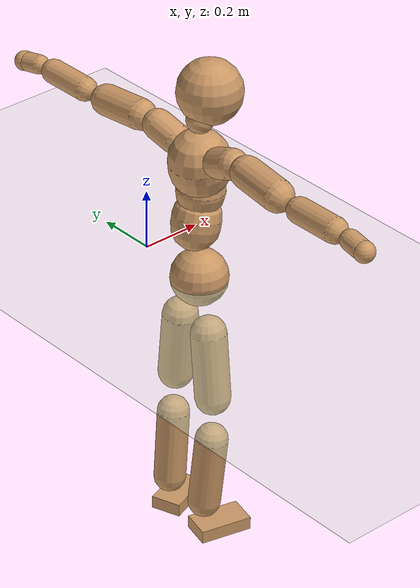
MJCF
<mujoco model="humanoid">
  <compiler coordinate="local" angle="radian"/>
  <default>
    <joint damping="0.0" armature="0.01" stiffness="0.0" limited="true"/>
    <geom conaffinity="1" condim="3" contype="7" margin="0.001" rgba="0.8 0.6 .4 1"/>
  </default>
  <asset>
    <texture type="skybox" builtin="gradient" rgb1=".4 .5 .6" rgb2="0 0 0" width="100" height="100"/>
    <texture builtin="flat" height="1278" mark="cross" markrgb="1 1 1" name="texgeom" random="0.01" rgb1="0.8 0.6 0.4" rgb2="0.8 0.6 0.4" type="cube" width="127"/>
    <texture builtin="checker" height="100" name="texplane" rgb1="0 0 0" rgb2="0.8 0.8 0.8" type="2d" width="100"/>
    <material name="MatPlane" reflectance="0.5" shininess="1" specular="1" texrepeat="60 60" texture="texplane"/>
    <material name="geom" texture="texgeom" texuniform="true"/>
  </asset>
  <worldbody>
    <light cutoff="100" diffuse="1 1 1" dir="-0 0 -1.3" directional="true" exponent="1" pos="0 0 1.3" specular=".1 .1 .1"/>
    <geom conaffinity="1" condim="3" name="floor" pos="0 0 0" rgba="0.8 0.9 0.8 1" size="100 100 .2" type="plane" material="MatPlane"/>
    <body name="Pelvis" pos="-0.0002 -0.2492 0.0105">
      <freejoint name="Pelvis"/>
      <geom type="sphere" contype="1" conaffinity="1" density="500" size="0.0929" pos="0.0000 0.0000 0.0000" name="Pelvis"/>
      <body name="L_Hip" pos="-0.0231 0.0556 -0.0836">
        <joint name="L_Hip_x" type="hinge" pos="0 0 0" axis="1 0 0" stiffness="800" damping="80" armature="0.02" range="-180.0000 180.0000"/>
        <joint name="L_Hip_y" type="hinge" pos="0 0 0" axis="0 1 0" stiffness="800" damping="80" armature="0.02" range="-180.0000 180.0000"/>
        <joint name="L_Hip_z" type="hinge" pos="0 0 0" axis="0 0 1" stiffness="800" damping="80" armature="0.02" range="-180.0000 180.0000"/>
        <geom type="capsule" contype="1" conaffinity="1" density="500" fromto="0.0008 0.0081 -0.0755 0.0032 0.0326 -0.3021" size="0.058" name="L_Hip"/>
        <body name="L_Knee" pos="0.004 0.0407 -0.3776">
          <joint name="L_Knee_x" type="hinge" pos="0 0 0" axis="1 0 0" stiffness="800" damping="80" armature="0.02" range="-180.0000 180.0000"/>
          <joint name="L_Knee_y" type="hinge" pos="0 0 0" axis="0 1 0" stiffness="800" damping="80" armature="0.02" range="-180.0000 180.0000"/>
          <joint name="L_Knee_z" type="hinge" pos="0 0 0" axis="0 0 1" stiffness="800" damping="80" armature="0.02" range="-180.0000 180.0000"/>
          <geom type="capsule" contype="1" conaffinity="1" density="500" fromto="-0.0075 -0.0027 -0.0796 -0.0301 -0.0107 -0.3185" size="0.053" name="L_Knee"/>
          <body name="L_Ankle" pos="-0.0377 -0.0134 -0.3981">
            <joint name="L_Ankle_x" type="hinge" pos="0 0 0" axis="1 0 0" stiffness="800" damping="80" armature="0.02" range="-180.0000 180.0000"/>
            <joint name="L_Ankle_y" type="hinge" pos="0 0 0" axis="0 1 0" stiffness="800" damping="80" armature="0.02" range="-180.0000 180.0000"/>
            <joint name="L_Ankle_z" type="hinge" pos="0 0 0" axis="0 0 1" stiffness="800" damping="80" armature="0.02" range="-180.0000 180.0000"/>
            <geom type="box" contype="1" conaffinity="1" density="500" pos="0.0581 0.0205 -0.0287" size="0.0813 0.0502 0.0218" quat="0.9857 0.0000 0.0000 0.1686" name="L_Ankle"/>
            <body name="L_Toe" pos="0.1161 0.0409 -0.0575">
              <joint name="L_Toe_x" type="hinge" pos="0 0 0" axis="1 0 0" stiffness="500" damping="50" armature="0.02" range="-180.0000 180.0000"/>
              <joint name="L_Toe_y" type="hinge" pos="0 0 0" axis="0 1 0" stiffness="500" damping="50" armature="0.02" range="-180.0000 180.0000"/>
              <joint name="L_Toe_z" type="hinge" pos="0 0 0" axis="0 0 1" stiffness="500" damping="50" armature="0.02" range="-180.0000 180.0000"/>
              <geom type="box" contype="1" conaffinity="1" density="500" pos="0.0000 0.0000 0.0297" size="0.001 0.0024 0.0011" quat="0.9849 0.0000 0.0000 0.1734" name="L_Toe"/>
            </body>
          </body>
        </body>
      </body>
      <body name="R_Hip" pos="-0.0192 -0.0588 -0.0922">
        <joint name="R_Hip_x" type="hinge" pos="0 0 0" axis="1 0 0" stiffness="800" damping="80" armature="0.02" range="-180.0000 180.0000"/>
        <joint name="R_Hip_y" type="hinge" pos="0 0 0" axis="0 1 0" stiffness="800" damping="80" armature="0.02" range="-180.0000 180.0000"/>
        <joint name="R_Hip_z" type="hinge" pos="0 0 0" axis="0 0 1" stiffness="800" damping="80" armature="0.02" range="-180.0000 180.0000"/>
        <geom type="capsule" contype="1" conaffinity="1" density="500" fromto="-0.0014 -0.0085 -0.0749 -0.0055 -0.0341 -0.2994" size="0.0578" name="R_Hip"/>
        <body name="R_Knee" pos="-0.0068 -0.0427 -0.3743">
          <joint name="R_Knee_x" type="hinge" pos="0 0 0" axis="1 0 0" stiffness="800" damping="80" armature="0.02" range="-180.0000 180.0000"/>
          <joint name="R_Knee_y" type="hinge" pos="0 0 0" axis="0 1 0" stiffness="800" damping="80" armature="0.02" range="-180.0000 180.0000"/>
          <joint name="R_Knee_z" type="hinge" pos="0 0 0" axis="0 0 1" stiffness="800" damping="80" armature="0.02" range="-180.0000 180.0000"/>
          <geom type="capsule" contype="1" conaffinity="1" density="500" fromto="-0.0068 0.0037 -0.0787 -0.0273 0.0146 -0.3147" size="0.0535" name="R_Knee"/>
          <body name="R_Ankle" pos="-0.0341 0.0183 -0.3933">
            <joint name="R_Ankle_x" type="hinge" pos="0 0 0" axis="1 0 0" stiffness="800" damping="80" armature="0.02" range="-180.0000 180.0000"/>
            <joint name="R_Ankle_y" type="hinge" pos="0 0 0" axis="0 1 0" stiffness="800" damping="80" armature="0.02" range="-180.0000 180.0000"/>
            <joint name="R_Ankle_z" type="hinge" pos="0 0 0" axis="0 0 1" stiffness="800" damping="80" armature="0.02" range="-180.0000 180.0000"/>
            <geom type="box" contype="1" conaffinity="1" density="500" pos="0.0624 -0.0150 -0.0306" size="0.0866 0.0499 0.0219" quat="0.9931 0.0000 0.0000 -0.1176" name="R_Ankle"/>
            <body name="R_Toe" pos="0.1247 -0.0299 -0.0611">
              <joint name="R_Toe_x" type="hinge" pos="0 0 0" axis="1 0 0" stiffness="500" damping="50" armature="0.02" range="-180.0000 180.0000"/>
              <joint name="R_Toe_y" type="hinge" pos="0 0 0" axis="0 1 0" stiffness="500" damping="50" armature="0.02" range="-180.0000 180.0000"/>
              <joint name="R_Toe_z" type="hinge" pos="0 0 0" axis="0 0 1" stiffness="500" damping="50" armature="0.02" range="-180.0000 180.0000"/>
              <geom type="box" contype="1" conaffinity="1" density="500" pos="0.0000 0.0000 0.0326" size="0.001 0.0024 0.0012" quat="0.9941 0.0000 0.0000 -0.1083" name="R_Toe"/>
            </body>
          </body>
        </body>
      </body>
      <body name="Torso" pos="-0.025 0.0043 0.125">
        <joint name="Torso_x" type="hinge" pos="0 0 0" axis="1 0 0" stiffness="1000" damping="100" armature="0.02" range="-180.0000 180.0000"/>
        <joint name="Torso_y" type="hinge" pos="0 0 0" axis="0 1 0" stiffness="1000" damping="100" armature="0.02" range="-180.0000 180.0000"/>
        <joint name="Torso_z" type="hinge" pos="0 0 0" axis="0 0 1" stiffness="1000" damping="100" armature="0.02" range="-180.0000 180.0000"/>
        <geom type="capsule" contype="1" conaffinity="1" density="500" fromto="0.0208 0.0031 0.0872 0.0139 0.0020 0.0581" size="0.0784" name="Torso"/>
        <body name="Spine" pos="0.0347 0.0051 0.1453">
          <joint name="Spine_x" type="hinge" pos="0 0 0" axis="1 0 0" stiffness="1000" damping="100" armature="0.02" range="-180.0000 180.0000"/>
          <joint name="Spine_y" type="hinge" pos="0 0 0" axis="0 1 0" stiffness="1000" damping="100" armature="0.02" range="-180.0000 180.0000"/>
          <joint name="Spine_z" type="hinge" pos="0 0 0" axis="0 0 1" stiffness="1000" damping="100" armature="0.02" range="-180.0000 180.0000"/>
          <geom type="capsule" contype="1" conaffinity="1" density="500" fromto="0.0022 -0.0017 0.0348 0.0015 -0.0011 0.0232" size="0.0772" name="Spine"/>
          <body name="Chest" pos="0.0036 -0.0029 0.0581">
            <joint name="Chest_x" type="hinge" pos="0 0 0" axis="1 0 0" stiffness="1000" damping="100" armature="0.02" range="-180.0000 180.0000"/>
            <joint name="Chest_y" type="hinge" pos="0 0 0" axis="0 1 0" stiffness="1000" damping="100" armature="0.02" range="-180.0000 180.0000"/>
            <joint name="Chest_z" type="hinge" pos="0 0 0" axis="0 0 1" stiffness="1000" damping="100" armature="0.02" range="-180.0000 180.0000"/>
            <geom type="capsule" contype="1" conaffinity="1" density="500" fromto="-0.0143 -0.0055 0.0848 -0.0095 -0.0037 0.0565" size="0.0975" name="Chest"/>
            <body name="Neck" pos="-0.0286 -0.0142 0.2058">
              <joint name="Neck_x" type="hinge" pos="0 0 0" axis="1 0 0" stiffness="500" damping="50" armature="0.02" range="-180.0000 180.0000"/>
              <joint name="Neck_y" type="hinge" pos="0 0 0" axis="0 1 0" stiffness="500" damping="50" armature="0.02" range="-180.0000 180.0000"/>
              <joint name="Neck_z" type="hinge" pos="0 0 0" axis="0 0 1" stiffness="500" damping="50" armature="0.02" range="-180.0000 180.0000"/>
              <geom type="capsule" contype="1" conaffinity="1" density="500" fromto="0.0109 0.0016 0.0192 0.0437 0.0064 0.0768" size="0.0441" name="Neck"/>
              <body name="Head" pos="0.0546 0.008 0.096">
                <joint name="Head_x" type="hinge" pos="0 0 0" axis="1 0 0" stiffness="500" damping="50" armature="0.02" range="-180.0000 180.0000"/>
                <joint name="Head_y" type="hinge" pos="0 0 0" axis="0 1 0" stiffness="500" damping="50" armature="0.02" range="-180.0000 180.0000"/>
                <joint name="Head_z" type="hinge" pos="0 0 0" axis="0 0 1" stiffness="500" damping="50" armature="0.02" range="-180.0000 180.0000"/>
                <geom type="sphere" contype="1" conaffinity="1" density="500" size="0.1036" pos="0.0000 0.0000 0.0000" name="Head"/>
              </body>
            </body>
            <body name="L_Thorax" pos="-0.0203 0.0683 0.1088">
              <joint name="L_Thorax_x" type="hinge" pos="0 0 0" axis="1 0 0" stiffness="500" damping="50" armature="0.02" range="-180.0000 180.0000"/>
              <joint name="L_Thorax_y" type="hinge" pos="0 0 0" axis="0 1 0" stiffness="500" damping="50" armature="0.02" range="-180.0000 180.0000"/>
              <joint name="L_Thorax_z" type="hinge" pos="0 0 0" axis="0 0 1" stiffness="500" damping="50" armature="0.02" range="-180.0000 180.0000"/>
              <geom type="capsule" contype="1" conaffinity="1" density="500" fromto="-0.0037 0.0231 0.0084 -0.0146 0.0924 0.0337" size="0.0486" name="L_Thorax"/>
              <body name="L_Shoulder" pos="-0.0183 0.1155 0.0421">
                <joint name="L_Shoulder_x" type="hinge" pos="0 0 0" axis="1 0 0" stiffness="500" damping="50" armature="0.02" range="-720.0000 720.0000"/>
                <joint name="L_Shoulder_y" type="hinge" pos="0 0 0" axis="0 1 0" stiffness="500" damping="50" armature="0.02" range="-720.0000 720.0000"/>
                <joint name="L_Shoulder_z" type="hinge" pos="0 0 0" axis="0 0 1" stiffness="500" damping="50" armature="0.02" range="-720.0000 720.0000"/>
                <geom type="capsule" contype="1" conaffinity="1" density="500" fromto="-0.0029 0.0499 -0.0029 -0.0117 0.1998 -0.0115" size="0.0499" name="L_Shoulder"/>
                <body name="L_Elbow" pos="-0.0146 0.2497 -0.0143">
                  <joint name="L_Elbow_x" type="hinge" pos="0 0 0" axis="1 0 0" stiffness="500" damping="50" armature="0.02" range="-720.0000 720.0000"/>
                  <joint name="L_Elbow_y" type="hinge" pos="0 0 0" axis="0 1 0" stiffness="500" damping="50" armature="0.02" range="-720.0000 720.0000"/>
                  <joint name="L_Elbow_z" type="hinge" pos="0 0 0" axis="0 0 1" stiffness="500" damping="50" armature="0.02" range="-720.0000 720.0000"/>
                  <geom type="capsule" contype="1" conaffinity="1" density="500" fromto="-0.0022 0.0487 0.0017 -0.0088 0.1946 0.0068" size="0.0394" name="L_Elbow"/>
                  <body name="L_Wrist" pos="-0.0111 0.2433 0.0085">
                    <joint name="L_Wrist_x" type="hinge" pos="0 0 0" axis="1 0 0" stiffness="300" damping="30" armature="0.02" range="-180.0000 180.0000"/>
                    <joint name="L_Wrist_y" type="hinge" pos="0 0 0" axis="0 1 0" stiffness="300" damping="30" armature="0.02" range="-180.0000 180.0000"/>
                    <joint name="L_Wrist_z" type="hinge" pos="0 0 0" axis="0 0 1" stiffness="300" damping="30" armature="0.02" range="-180.0000 180.0000"/>
                    <geom type="capsule" contype="1" conaffinity="1" density="500" fromto="-0.0028 0.0155 -0.0019 -0.0111 0.0622 -0.0076" size="0.0311" name="L_Wrist"/>
                    <body name="L_Hand" pos="-0.0139 0.0777 -0.0095">
                      <joint name="L_Hand_x" type="hinge" pos="0 0 0" axis="1 0 0" stiffness="300" damping="30" armature="0.02" range="-180.0000 180.0000"/>
                      <joint name="L_Hand_y" type="hinge" pos="0 0 0" axis="0 1 0" stiffness="300" damping="30" armature="0.02" range="-180.0000 180.0000"/>
                      <joint name="L_Hand_z" type="hinge" pos="0 0 0" axis="0 0 1" stiffness="300" damping="30" armature="0.02" range="-180.0000 180.0000"/>
                      <geom type="sphere" contype="1" conaffinity="1" density="500" size="0.0322" pos="0.0000 0.0000 0.0000" name="L_Hand"/>
                    </body>
                  </body>
                </body>
              </body>
            </body>
            <body name="R_Thorax" pos="-0.0227 -0.0817 0.1092">
              <joint name="R_Thorax_x" type="hinge" pos="0 0 0" axis="1 0 0" stiffness="500" damping="50" armature="0.02" range="-180.0000 180.0000"/>
              <joint name="R_Thorax_y" type="hinge" pos="0 0 0" axis="0 1 0" stiffness="500" damping="50" armature="0.02" range="-180.0000 180.0000"/>
              <joint name="R_Thorax_z" type="hinge" pos="0 0 0" axis="0 0 1" stiffness="500" damping="50" armature="0.02" range="-180.0000 180.0000"/>
              <geom type="capsule" contype="1" conaffinity="1" density="500" fromto="-0.0014 -0.0215 0.0086 -0.0055 -0.0861 0.0343" size="0.0491" name="R_Thorax"/>
              <body name="R_Shoulder" pos="-0.0069 -0.1076 0.0429">
                <joint name="R_Shoulder_x" type="hinge" pos="0 0 0" axis="1 0 0" stiffness="500" damping="50" armature="0.02" range="-720.0000 720.0000"/>
                <joint name="R_Shoulder_y" type="hinge" pos="0 0 0" axis="0 1 0" stiffness="500" damping="50" armature="0.02" range="-720.0000 720.0000"/>
                <joint name="R_Shoulder_z" type="hinge" pos="0 0 0" axis="0 0 1" stiffness="500" damping="50" armature="0.02" range="-720.0000 720.0000"/>
                <geom type="capsule" contype="1" conaffinity="1" density="500" fromto="-0.0047 -0.0498 -0.0026 -0.0190 -0.1991 -0.0104" size="0.0514" name="R_Shoulder"/>
                <body name="R_Elbow" pos="-0.0237 -0.2488 -0.013">
                  <joint name="R_Elbow_x" type="hinge" pos="0 0 0" axis="1 0 0" stiffness="500" damping="50" armature="0.02" range="-720.0000 720.0000"/>
                  <joint name="R_Elbow_y" type="hinge" pos="0 0 0" axis="0 1 0" stiffness="500" damping="50" armature="0.02" range="-720.0000 720.0000"/>
                  <joint name="R_Elbow_z" type="hinge" pos="0 0 0" axis="0 0 1" stiffness="500" damping="50" armature="0.02" range="-720.0000 720.0000"/>
                  <geom type="capsule" contype="1" conaffinity="1" density="500" fromto="-0.0017 -0.0505 0.0016 -0.0069 -0.2020 0.0065" size="0.041" name="R_Elbow"/>
                  <body name="R_Wrist" pos="-0.0086 -0.2525 0.0081">
                    <joint name="R_Wrist_x" type="hinge" pos="0 0 0" axis="1 0 0" stiffness="300" damping="30" armature="0.02" range="-180.0000 180.0000"/>
                    <joint name="R_Wrist_y" type="hinge" pos="0 0 0" axis="0 1 0" stiffness="300" damping="30" armature="0.02" range="-180.0000 180.0000"/>
                    <joint name="R_Wrist_z" type="hinge" pos="0 0 0" axis="0 0 1" stiffness="300" damping="30" armature="0.02" range="-180.0000 180.0000"/>
                    <geom type="capsule" contype="1" conaffinity="1" density="500" fromto="-0.0018 -0.0162 -0.0015 -0.0072 -0.0649 -0.0061" size="0.0323" name="R_Wrist"/>
                    <body name="R_Hand" pos="-0.009 -0.0811 -0.0077">
                      <joint name="R_Hand_x" type="hinge" pos="0 0 0" axis="1 0 0" stiffness="300" damping="30" armature="0.02" range="-180.0000 180.0000"/>
                      <joint name="R_Hand_y" type="hinge" pos="0 0 0" axis="0 1 0" stiffness="300" damping="30" armature="0.02" range="-180.0000 180.0000"/>
                      <joint name="R_Hand_z" type="hinge" pos="0 0 0" axis="0 0 1" stiffness="300" damping="30" armature="0.02" range="-180.0000 180.0000"/>
                      <geom type="sphere" contype="1" conaffinity="1" density="500" size="0.0332" pos="0.0000 0.0000 0.0000" name="R_Hand"/>
                    </body>
                  </body>
                </body>
              </body>
            </body>
          </body>
        </body>
      </body>
    </body>
  </worldbody>
  <actuator>
    <motor name="L_Hip_x" joint="L_Hip_x" gear="500"/>
    <motor name="L_Hip_y" joint="L_Hip_y" gear="500"/>
    <motor name="L_Hip_z" joint="L_Hip_z" gear="500"/>
    <motor name="L_Knee_x" joint="L_Knee_x" gear="500"/>
    <motor name="L_Knee_y" joint="L_Knee_y" gear="500"/>
    <motor name="L_Knee_z" joint="L_Knee_z" gear="500"/>
    <motor name="L_Ankle_x" joint="L_Ankle_x" gear="500"/>
    <motor name="L_Ankle_y" joint="L_Ankle_y" gear="500"/>
    <motor name="L_Ankle_z" joint="L_Ankle_z" gear="500"/>
    <motor name="L_Toe_x" joint="L_Toe_x" gear="500"/>
    <motor name="L_Toe_y" joint="L_Toe_y" gear="500"/>
    <motor name="L_Toe_z" joint="L_Toe_z" gear="500"/>
    <motor name="R_Hip_x" joint="R_Hip_x" gear="500"/>
    <motor name="R_Hip_y" joint="R_Hip_y" gear="500"/>
    <motor name="R_Hip_z" joint="R_Hip_z" gear="500"/>
    <motor name="R_Knee_x" joint="R_Knee_x" gear="500"/>
    <motor name="R_Knee_y" joint="R_Knee_y" gear="500"/>
    <motor name="R_Knee_z" joint="R_Knee_z" gear="500"/>
    <motor name="R_Ankle_x" joint="R_Ankle_x" gear="500"/>
    <motor name="R_Ankle_y" joint="R_Ankle_y" gear="500"/>
    <motor name="R_Ankle_z" joint="R_Ankle_z" gear="500"/>
    <motor name="R_Toe_x" joint="R_Toe_x" gear="500"/>
    <motor name="R_Toe_y" joint="R_Toe_y" gear="500"/>
    <motor name="R_Toe_z" joint="R_Toe_z" gear="500"/>
    <motor name="Torso_x" joint="Torso_x" gear="500"/>
    <motor name="Torso_y" joint="Torso_y" gear="500"/>
    <motor name="Torso_z" joint="Torso_z" gear="500"/>
    <motor name="Spine_x" joint="Spine_x" gear="500"/>
    <motor name="Spine_y" joint="Spine_y" gear="500"/>
    <motor name="Spine_z" joint="Spine_z" gear="500"/>
    <motor name="Chest_x" joint="Chest_x" gear="500"/>
    <motor name="Chest_y" joint="Chest_y" gear="500"/>
    <motor name="Chest_z" joint="Chest_z" gear="500"/>
    <motor name="Neck_x" joint="Neck_x" gear="500"/>
    <motor name="Neck_y" joint="Neck_y" gear="500"/>
    <motor name="Neck_z" joint="Neck_z" gear="500"/>
    <motor name="Head_x" joint="Head_x" gear="500"/>
    <motor name="Head_y" joint="Head_y" gear="500"/>
    <motor name="Head_z" joint="Head_z" gear="500"/>
    <motor name="L_Thorax_x" joint="L_Thorax_x" gear="500"/>
    <motor name="L_Thorax_y" joint="L_Thorax_y" gear="500"/>
    <motor name="L_Thorax_z" joint="L_Thorax_z" gear="500"/>
    <motor name="L_Shoulder_x" joint="L_Shoulder_x" gear="500"/>
    <motor name="L_Shoulder_y" joint="L_Shoulder_y" gear="500"/>
    <motor name="L_Shoulder_z" joint="L_Shoulder_z" gear="500"/>
    <motor name="L_Elbow_x" joint="L_Elbow_x" gear="500"/>
    <motor name="L_Elbow_y" joint="L_Elbow_y" gear="500"/>
    <motor name="L_Elbow_z" joint="L_Elbow_z" gear="500"/>
    <motor name="L_Wrist_x" joint="L_Wrist_x" gear="500"/>
    <motor name="L_Wrist_y" joint="L_Wrist_y" gear="500"/>
    <motor name="L_Wrist_z" joint="L_Wrist_z" gear="500"/>
    <motor name="L_Hand_x" joint="L_Hand_x" gear="500"/>
    <motor name="L_Hand_y" joint="L_Hand_y" gear="500"/>
    <motor name="L_Hand_z" joint="L_Hand_z" gear="500"/>
    <motor name="R_Thorax_x" joint="R_Thorax_x" gear="500"/>
    <motor name="R_Thorax_y" joint="R_Thorax_y" gear="500"/>
    <motor name="R_Thorax_z" joint="R_Thorax_z" gear="500"/>
    <motor name="R_Shoulder_x" joint="R_Shoulder_x" gear="500"/>
    <motor name="R_Shoulder_y" joint="R_Shoulder_y" gear="500"/>
    <motor name="R_Shoulder_z" joint="R_Shoulder_z" gear="500"/>
    <motor name="R_Elbow_x" joint="R_Elbow_x" gear="500"/>
    <motor name="R_Elbow_y" joint="R_Elbow_y" gear="500"/>
    <motor name="R_Elbow_z" joint="R_Elbow_z" gear="500"/>
    <motor name="R_Wrist_x" joint="R_Wrist_x" gear="500"/>
    <motor name="R_Wrist_y" joint="R_Wrist_y" gear="500"/>
    <motor name="R_Wrist_z" joint="R_Wrist_z" gear="500"/>
    <motor name="R_Hand_x" joint="R_Hand_x" gear="500"/>
    <motor name="R_Hand_y" joint="R_Hand_y" gear="500"/>
    <motor name="R_Hand_z" joint="R_Hand_z" gear="500"/>
  </actuator>
  <contact>
    <exclude body1="Torso" body2="Chest"/>
    <exclude body1="Head" body2="Chest"/>
    <exclude body1="R_Knee" body2="R_Toe"/>
    <exclude body1="R_Knee" body2="L_Ankle"/>
    <exclude body1="R_Knee" body2="L_Toe"/>
    <exclude body1="L_Knee" body2="L_Toe"/>
    <exclude body1="L_Knee" body2="R_Ankle"/>
    <exclude body1="L_Knee" body2="R_Toe"/>
    <exclude body1="L_Shoulder" body2="Chest"/>
    <exclude body1="R_Shoulder" body2="Chest"/>
  </contact>
  <sensor/>
  <size njmax="700" nconmax="700"/>
</mujoco>
